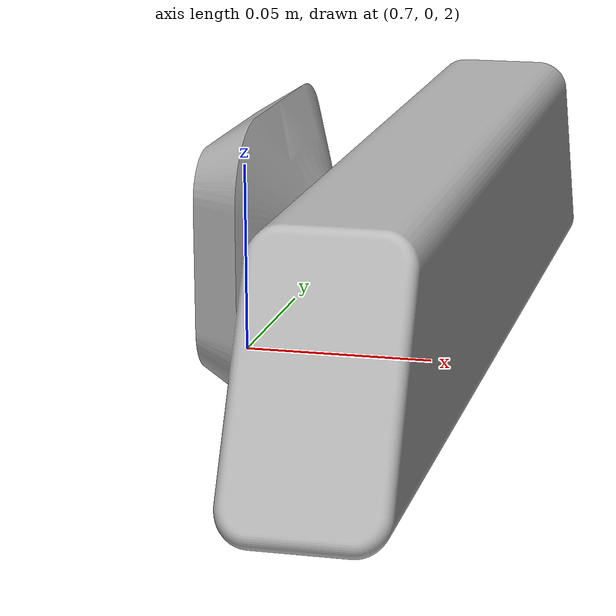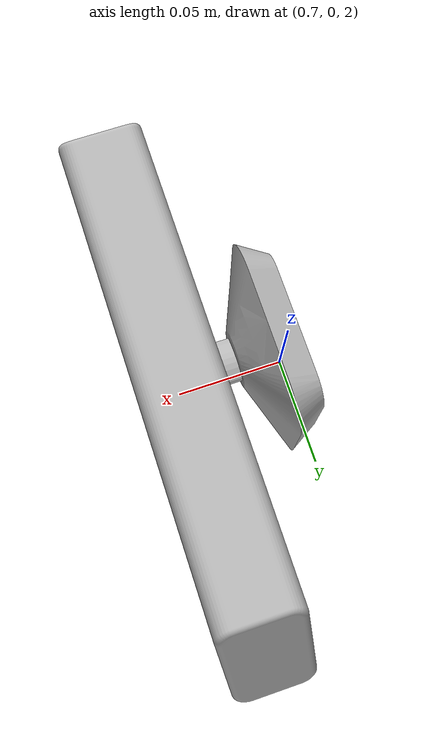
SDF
<?xml version="1.0"?>
  <sdf version="1.4">
    <world name="default">

    <!-- A ground plane -->
    <include>
      <uri>model://ground_plane</uri>
    </include>

    <!-- A global light source -->
    <include>
      <uri>model://sun</uri>
    </include>

    <include>
      <uri>model://kinect</uri>
      <pose>0.75 0 2 0 1.5707 0</pose>
    </include>

    </world>
  </sdf>

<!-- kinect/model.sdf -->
<sdf version="1.4">
  <model name="kinect">
    <static>true</static>
    <pose>0 0 0 0 1.5707 0</pose>
    <link name="link">
      <inertial>
        <mass>0.1</mass>
      </inertial>
      <collision name="collision">
        <geometry>
          <box>
            <size>0.073000 0.276000 0.072000</size>
          </box>
        </geometry>
      </collision>
      <visual name="visual">
        <geometry>
          <mesh>
            <uri>model://kinect/meshes/kinect.dae</uri>
          </mesh>
        </geometry>
      </visual>
      <sensor name="camera" type="depth">
        <update_rate>20</update_rate>
        <camera>
          <horizontal_fov>1.047198</horizontal_fov>
          <image>
            <width>640</width>
            <height>480</height>
            <format>R8G8B8</format>
          </image>
          <clip>
            <near>0.05</near>
            <far>3</far>
          </clip>
        </camera>

        <plugin name="camera_plugin" filename="libgazebo_ros_openni_kinect.so">
          <baseline>0.2</baseline>
          <alwaysOn>true</alwaysOn>
          <updateRate>0.0</updateRate>
          <cameraName>camera_ir</cameraName>

          <imageTopicName>/camera/depth/image_raw_rgb</imageTopicName>
          <depthImageTopicName>/camera/depth/image_raw_depth</depthImageTopicName>

          <cameraInfoTopicName>/camera/depth/camera_rgb_info</cameraInfoTopicName>
          <depthImageInfoTopicName>/camera/depth/camera_depth_info</depthImageInfoTopicName>

          <pointCloudTopicName>/camera/depth/points</pointCloudTopicName>
          <frameName>camera_link</frameName>
          <pointCloudCutoff>0.05</pointCloudCutoff>
          <distortionK1>0</distortionK1>
          <distortionK2>0</distortionK2>
          <distortionK3>0</distortionK3>
          <distortionT1>0</distortionT1>
          <distortionT2>0</distortionT2>
          <CxPrime>0</CxPrime>
          <Cx>0</Cx>
          <Cy>0</Cy>
          <focalLength>0</focalLength>
          <hackBaseline>0</hackBaseline>
        </plugin>

      </sensor>
    </link>
  </model>
</sdf>
